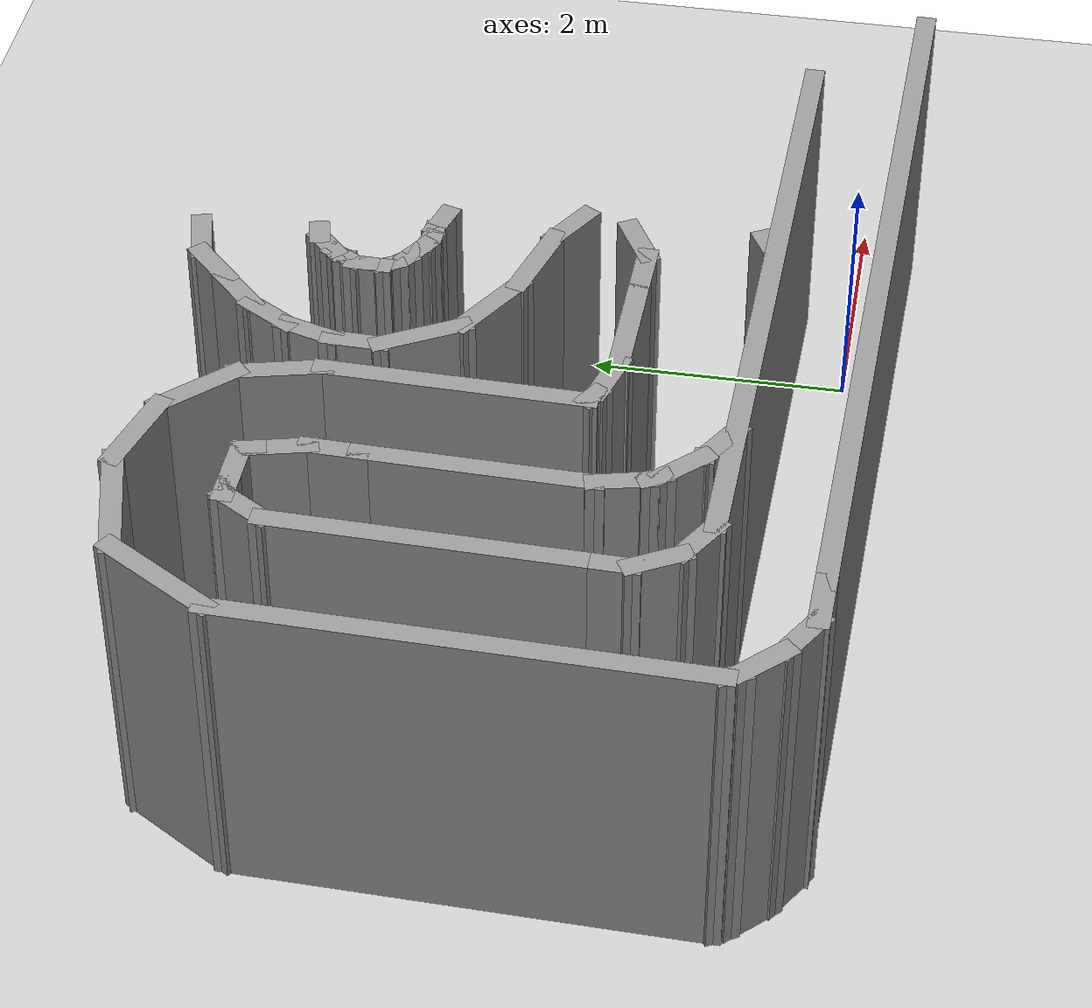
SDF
<sdf version="1.7">
 <world name="default">
  <model name="ground_plane">
   <static>1</static>
   <link name="link">
    <collision name="collision">
     <geometry><plane><normal>0 0 1</normal><size>100 100</size></plane></geometry>
     <surface>
      <contact><collide_bitmask>65535</collide_bitmask></contact>
      <friction><ode><mu>100</mu><mu2>50</mu2></ode></friction>
     </surface>
    </collision>
    <visual name="visual">
     <cast_shadows>0</cast_shadows>
     <geometry><plane><normal>0 0 1</normal><size>100 100</size></plane></geometry>
     <material>
      <script><uri>file://media/materials/scripts/gazebo.material</uri><name>Gazebo/Grey</name></script>
     </material>
    </visual>
   </link>
  </model>
  <model name="t11">
   <pose>-1.75336 2.18774 -0 0 -0 1.54563</pose>
   <link name="Wall_10">
    <collision name="Wall_10_Collision">
     <geometry><box><size>1 0.15 2.5</size></box></geometry>
     <pose>0 0 1.25 0 -0 0</pose>
    </collision>
    <visual name="Wall_10_Visual">
     <pose>0 0 1.25 0 -0 0</pose>
     <geometry><box><size>1 0.15 2.5</size></box></geometry>
     <material>
      <script><uri>file://media/materials/scripts/gazebo.material</uri><name>Gazebo/Grey</name></script>
      <ambient>1 1 1 1</ambient>
     </material>
     <meta><layer>0</layer></meta>
    </visual>
    <pose>-0.781809 0.629649 0 0 -0 -1.5708</pose>
   </link>
   <link name="Wall_11">
    <collision name="Wall_11_Collision">
     <geometry><box><size>0.5 0.15 2.5</size></box></geometry>
     <pose>0 0 1.25 0 -0 0</pose>
    </collision>
    <visual name="Wall_11_Visual">
     <pose>0 0 1.25 0 -0 0</pose>
     <geometry><box><size>0.5 0.15 2.5</size></box></geometry>
     <material>
      <script><uri>file://media/materials/scripts/gazebo.material</uri><name>Gazebo/Grey</name></script>
      <ambient>1 1 1 1</ambient>
     </material>
     <meta><layer>0</layer></meta>
    </visual>
    <pose>-0.781809 0.029649 0 0 -0 -1.5708</pose>
   </link>
   <link name="Wall_12">
    <collision name="Wall_12_Collision">
     <geometry><box><size>0.5 0.15 2.5</size></box></geometry>
     <pose>0 0 1.25 0 -0 0</pose>
    </collision>
    <visual name="Wall_12_Visual">
     <pose>0 0 1.25 0 -0 0</pose>
     <geometry><box><size>0.5 0.15 2.5</size></box></geometry>
     <material>
      <script><uri>file://media/materials/scripts/gazebo.material</uri><name>Gazebo/Grey</name></script>
      <ambient>1 1 1 1</ambient>
     </material>
     <meta><layer>0</layer></meta>
    </visual>
    <pose>-0.694309 -0.296906 0 0 -0 -1.0472</pose>
   </link>
   <link name="Wall_129">
    <collision name="Wall_129_Collision">
     <geometry><box><size>0.25 0.15 2.5</size></box></geometry>
     <pose>0 0 1.25 0 -0 0</pose>
    </collision>
    <visual name="Wall_129_Visual">
     <pose>0 0 1.25 0 -0 0</pose>
     <geometry><box><size>0.25 0.15 2.5</size></box></geometry>
     <material>
      <script><uri>file://media/materials/scripts/gazebo.material</uri><name>Gazebo/Grey</name></script>
      <ambient>1 1 1 1</ambient>
     </material>
     <meta><layer>0</layer></meta>
    </visual>
    <pose>-1.59468 -0.469524 0 0 -0 2.0944</pose>
   </link>
   <link name="Wall_14">
    <collision name="Wall_14_Collision">
     <geometry><box><size>0.5 0.15 2.5</size></box></geometry>
     <pose>0 0 1.25 0 -0 0</pose>
    </collision>
    <visual name="Wall_14_Visual">
     <pose>0 0 1.25 0 -0 0</pose>
     <geometry><box><size>0.5 0.15 2.5</size></box></geometry>
     <material>
      <script><uri>file://media/materials/scripts/gazebo.material</uri><name>Gazebo/Grey</name></script>
      <ambient>1 1 1 1</ambient>
     </material>
     <meta><layer>0</layer></meta>
    </visual>
    <pose>-0.181235 -0.387492 0 0 -0 1.0472</pose>
   </link>
   <link name="Wall_15">
    <collision name="Wall_15_Collision">
     <geometry><box><size>0.75 0.15 2.5</size></box></geometry>
     <pose>0 0 1.25 0 -0 0</pose>
    </collision>
    <visual name="Wall_15_Visual">
     <pose>0 0 1.25 0 -0 0</pose>
     <geometry><box><size>0.75 0.15 2.5</size></box></geometry>
     <material>
      <script><uri>file://media/materials/scripts/gazebo.material</uri><name>Gazebo/Grey</name></script>
      <ambient>1 1 1 1</ambient>
     </material>
     <meta><layer>0</layer></meta>
    </visual>
    <pose>-0.01609 0.05384 0 0 -0 1.309</pose>
   </link>
   <link name="Wall_16">
    <collision name="Wall_16_Collision">
     <geometry><box><size>0.75 0.15 2.5</size></box></geometry>
     <pose>0 0 1.25 0 -0 0</pose>
    </collision>
    <visual name="Wall_16_Visual">
     <pose>0 0 1.25 0 -0 0</pose>
     <geometry><box><size>0.75 0.15 2.5</size></box></geometry>
     <material>
      <script><uri>file://media/materials/scripts/gazebo.material</uri><name>Gazebo/Grey</name></script>
      <ambient>1 1 1 1</ambient>
     </material>
     <meta><layer>0</layer></meta>
    </visual>
    <pose>0.211556 0.603425 0 0 -0 1.0472</pose>
   </link>
   <link name="Wall_17">
    <collision name="Wall_17_Collision">
     <geometry><box><size>0.75 0.15 2.5</size></box></geometry>
     <pose>0 0 1.25 0 -0 0</pose>
    </collision>
    <visual name="Wall_17_Visual">
     <pose>0 0 1.25 0 -0 0</pose>
     <geometry><box><size>0.75 0.15 2.5</size></box></geometry>
     <material>
      <script><uri>file://media/materials/scripts/gazebo.material</uri><name>Gazebo/Grey</name></script>
      <ambient>1 1 1 1</ambient>
     </material>
     <meta><layer>0</layer></meta>
    </visual>
    <pose>0.621364 1.01323 0 0 -0 0.523599</pose>
   </link>
   <link name="Wall_18">
    <collision name="Wall_18_Collision">
     <geometry><box><size>0.5 0.15 2.5</size></box></geometry>
     <pose>0 0 1.25 0 -0 0</pose>
    </collision>
    <visual name="Wall_18_Visual">
     <pose>0 0 1.25 0 -0 0</pose>
     <geometry><box><size>0.5 0.15 2.5</size></box></geometry>
     <material>
      <script><uri>file://media/materials/scripts/gazebo.material</uri><name>Gazebo/Grey</name></script>
      <ambient>1 1 1 1</ambient>
     </material>
     <meta><layer>0</layer></meta>
    </visual>
    <pose>1.05617 1.16323 0 0 -0 0</pose>
   </link>
   <link name="Wall_19">
    <collision name="Wall_19_Collision">
     <geometry><box><size>0.5 0.15 2.5</size></box></geometry>
     <pose>0 0 1.25 0 -0 0</pose>
    </collision>
    <visual name="Wall_19_Visual">
     <pose>0 0 1.25 0 -0 0</pose>
     <geometry><box><size>0.5 0.15 2.5</size></box></geometry>
     <material>
      <script><uri>file://media/materials/scripts/gazebo.material</uri><name>Gazebo/Grey</name></script>
      <ambient>1 1 1 1</ambient>
     </material>
     <meta><layer>0</layer></meta>
    </visual>
    <pose>1.40021 1.11794 0 0 -0 -0.261799</pose>
   </link>
   <link name="Wall_2">
    <collision name="Wall_2_Collision">
     <geometry><box><size>1 0.15 2.5</size></box></geometry>
     <pose>0 0 1.25 0 -0 0</pose>
    </collision>
    <visual name="Wall_2_Visual">
     <pose>0 0 1.25 0 -0 0</pose>
     <geometry><box><size>1 0.15 2.5</size></box></geometry>
     <material>
      <script><uri>file://media/materials/scripts/gazebo.material</uri><name>Gazebo/Grey</name></script>
      <ambient>1 1 1 1</ambient>
     </material>
     <meta><layer>0</layer></meta>
    </visual>
    <pose>1.77983 3.67197 0 0 -0 -0.523599</pose>
   </link>
   <link name="Wall_20">
    <collision name="Wall_20_Collision">
     <geometry><box><size>0.5 0.15 2.5</size></box></geometry>
     <pose>0 0 1.25 0 -0 0</pose>
    </collision>
    <visual name="Wall_20_Visual">
     <pose>0 0 1.25 0 -0 0</pose>
     <geometry><box><size>0.5 0.15 2.5</size></box></geometry>
     <material>
      <script><uri>file://media/materials/scripts/gazebo.material</uri><name>Gazebo/Grey</name></script>
      <ambient>1 1 1 1</ambient>
     </material>
     <meta><layer>0</layer></meta>
    </visual>
    <pose>1.7208 0.985146 0 0 -0 -0.523599</pose>
   </link>
   <link name="Wall_21">
    <collision name="Wall_21_Collision">
     <geometry><box><size>0.5 0.15 2.5</size></box></geometry>
     <pose>0 0 1.25 0 -0 0</pose>
    </collision>
    <visual name="Wall_21_Visual">
     <pose>0 0 1.25 0 -0 0</pose>
     <geometry><box><size>0.5 0.15 2.5</size></box></geometry>
     <material>
      <script><uri>file://media/materials/scripts/gazebo.material</uri><name>Gazebo/Grey</name></script>
      <ambient>1 1 1 1</ambient>
     </material>
     <meta><layer>0</layer></meta>
    </visual>
    <pose>1.9961 0.773902 0 0 -0 -0.785398</pose>
   </link>
   <link name="Wall_22">
    <collision name="Wall_22_Collision">
     <geometry><box><size>0.5 0.15 2.5</size></box></geometry>
     <pose>0 0 1.25 0 -0 0</pose>
    </collision>
    <visual name="Wall_22_Visual">
     <pose>0 0 1.25 0 -0 0</pose>
     <geometry><box><size>0.5 0.15 2.5</size></box></geometry>
     <material>
      <script><uri>file://media/materials/scripts/gazebo.material</uri><name>Gazebo/Grey</name></script>
      <ambient>1 1 1 1</ambient>
     </material>
     <meta><layer>0</layer></meta>
    </visual>
    <pose>2.24358 0.526415 0 0 -0 -0.785398</pose>
   </link>
   <link name="Wall_23">
    <collision name="Wall_23_Collision">
     <geometry><box><size>0.5 0.15 2.5</size></box></geometry>
     <pose>0 0 1.25 0 -0 0</pose>
    </collision>
    <visual name="Wall_23_Visual">
     <pose>0 0 1.25 0 -0 0</pose>
     <geometry><box><size>0.5 0.15 2.5</size></box></geometry>
     <material>
      <script><uri>file://media/materials/scripts/gazebo.material</uri><name>Gazebo/Grey</name></script>
      <ambient>1 1 1 1</ambient>
     </material>
     <meta><layer>0</layer></meta>
    </visual>
    <pose>2.41262 0.233634 0 0 -0 -1.309</pose>
   </link>
   <link name="Wall_3">
    <collision name="Wall_3_Collision">
     <geometry><box><size>1 0.15 2.5</size></box></geometry>
     <pose>0 0 1.25 0 -0 0</pose>
    </collision>
    <visual name="Wall_3_Visual">
     <pose>0 0 1.25 0 -0 0</pose>
     <geometry><box><size>1 0.15 2.5</size></box></geometry>
     <material>
      <script><uri>file://media/materials/scripts/gazebo.material</uri><name>Gazebo/Grey</name></script>
      <ambient>1 1 1 1</ambient>
     </material>
     <meta><layer>0</layer></meta>
    </visual>
    <pose>2.25789 3.04895 0 0 -0 -1.309</pose>
   </link>
   <link name="Wall_34">
    <collision name="Wall_34_Collision">
     <geometry><box><size>3.5 0.15 2.5</size></box></geometry>
     <pose>0 0 1.25 0 -0 0</pose>
    </collision>
    <visual name="Wall_34_Visual">
     <pose>0 0 1.25 0 -0 0</pose>
     <geometry><box><size>3.5 0.15 2.5</size></box></geometry>
     <material>
      <script><uri>file://media/materials/scripts/gazebo.material</uri><name>Gazebo/Grey</name></script>
      <ambient>1 1 1 1</ambient>
     </material>
     <meta><layer>0</layer></meta>
    </visual>
    <pose>-0.26323 3.88447 0 0 -0 3.14159</pose>
   </link>
   <link name="Wall_35">
    <collision name="Wall_35_Collision">
     <geometry><box><size>0.25 0.15 2.5</size></box></geometry>
     <pose>0 0 1.25 0 -0 0</pose>
    </collision>
    <visual name="Wall_35_Visual">
     <pose>0 0 1.25 0 -0 0</pose>
     <geometry><box><size>0.25 0.15 2.5</size></box></geometry>
     <material>
      <script><uri>file://media/materials/scripts/gazebo.material</uri><name>Gazebo/Grey</name></script>
      <ambient>1 1 1 1</ambient>
     </material>
     <meta><layer>0</layer></meta>
    </visual>
    <pose>-1.98153 3.85947 0 0 -0 -2.61799</pose>
   </link>
   <link name="Wall_36">
    <collision name="Wall_36_Collision">
     <geometry><box><size>0.5 0.15 2.5</size></box></geometry>
     <pose>0 0 1.25 0 -0 0</pose>
    </collision>
    <visual name="Wall_36_Visual">
     <pose>0 0 1.25 0 -0 0</pose>
     <geometry><box><size>0.5 0.15 2.5</size></box></geometry>
     <material>
      <script><uri>file://media/materials/scripts/gazebo.material</uri><name>Gazebo/Grey</name></script>
      <ambient>1 1 1 1</ambient>
     </material>
     <meta><layer>0</layer></meta>
    </visual>
    <pose>-2.14858 3.71073 0 0 -0 -2.35619</pose>
   </link>
   <link name="Wall_37">
    <collision name="Wall_37_Collision">
     <geometry><box><size>0.5 0.15 2.5</size></box></geometry>
     <pose>0 0 1.25 0 -0 0</pose>
    </collision>
    <visual name="Wall_37_Visual">
     <pose>0 0 1.25 0 -0 0</pose>
     <geometry><box><size>0.5 0.15 2.5</size></box></geometry>
     <material>
      <script><uri>file://media/materials/scripts/gazebo.material</uri><name>Gazebo/Grey</name></script>
      <ambient>1 1 1 1</ambient>
     </material>
     <meta><layer>0</layer></meta>
    </visual>
    <pose>-2.35982 3.43543 0 0 -0 -2.0944</pose>
   </link>
   <link name="Wall_38">
    <collision name="Wall_38_Collision">
     <geometry><box><size>0.5 0.15 2.5</size></box></geometry>
     <pose>0 0 1.25 0 -0 0</pose>
    </collision>
    <visual name="Wall_38_Visual">
     <pose>0 0 1.25 0 -0 0</pose>
     <geometry><box><size>0.5 0.15 2.5</size></box></geometry>
     <material>
      <script><uri>file://media/materials/scripts/gazebo.material</uri><name>Gazebo/Grey</name></script>
      <ambient>1 1 1 1</ambient>
     </material>
     <meta><layer>0</layer></meta>
    </visual>
    <pose>-2.44732 3.10888 0 0 -0 -1.5708</pose>
   </link>
   <link name="Wall_39">
    <collision name="Wall_39_Collision">
     <geometry><box><size>6.5 0.15 2.5</size></box></geometry>
     <pose>0 0 1.25 0 -0 0</pose>
    </collision>
    <visual name="Wall_39_Visual">
     <pose>0 0 1.25 0 -0 0</pose>
     <geometry><box><size>6.5 0.15 2.5</size></box></geometry>
     <material>
      <script><uri>file://media/materials/scripts/gazebo.material</uri><name>Gazebo/Grey</name></script>
      <ambient>1 1 1 1</ambient>
     </material>
     <meta><layer>0</layer></meta>
    </visual>
    <pose>-2.44732 -0.241123 0 0 -0 -1.5708</pose>
   </link>
   <link name="Wall_4">
    <collision name="Wall_4_Collision">
     <geometry><box><size>0.75 0.15 2.5</size></box></geometry>
     <pose>0 0 1.25 0 -0 0</pose>
    </collision>
    <visual name="Wall_4_Visual">
     <pose>0 0 1.25 0 -0 0</pose>
     <geometry><box><size>0.75 0.15 2.5</size></box></geometry>
     <material>
      <script><uri>file://media/materials/scripts/gazebo.material</uri><name>Gazebo/Grey</name></script>
      <ambient>1 1 1 1</ambient>
     </material>
     <meta><layer>0</layer></meta>
    </visual>
    <pose>2.29024 2.34866 0 0 -0 -1.8326</pose>
   </link>
   <link name="Wall_41">
    <collision name="Wall_41_Collision">
     <geometry><box><size>5.25 0.15 2.5</size></box></geometry>
     <pose>0 0 1.25 0 -0 0</pose>
    </collision>
    <visual name="Wall_41_Visual">
     <pose>0 0 1.25 0 -0 0</pose>
     <geometry><box><size>5.25 0.15 2.5</size></box></geometry>
     <material>
      <script><uri>file://media/materials/scripts/gazebo.material</uri><name>Gazebo/Grey</name></script>
      <ambient>1 1 1 1</ambient>
     </material>
     <meta><layer>0</layer></meta>
    </visual>
    <pose>-1.67823 -0.005527 0 0 -0 1.5708</pose>
   </link>
   <link name="Wall_42">
    <collision name="Wall_42_Collision">
     <geometry><box><size>0.5 0.15 2.5</size></box></geometry>
     <pose>0 0 1.25 0 -0 0</pose>
    </collision>
    <visual name="Wall_42_Visual">
     <pose>0 0 1.25 0 -0 0</pose>
     <geometry><box><size>0.5 0.15 2.5</size></box></geometry>
     <material>
      <script><uri>file://media/materials/scripts/gazebo.material</uri><name>Gazebo/Grey</name></script>
      <ambient>1 1 1 1</ambient>
     </material>
     <meta><layer>0</layer></meta>
    </visual>
    <pose>-1.59073 2.69603 0 0 -0 1.0472</pose>
   </link>
   <link name="Wall_43">
    <collision name="Wall_43_Collision">
     <geometry><box><size>0.5 0.15 2.5</size></box></geometry>
     <pose>0 0 1.25 0 -0 0</pose>
    </collision>
    <visual name="Wall_43_Visual">
     <pose>0 0 1.25 0 -0 0</pose>
     <geometry><box><size>0.5 0.15 2.5</size></box></geometry>
     <material>
      <script><uri>file://media/materials/scripts/gazebo.material</uri><name>Gazebo/Grey</name></script>
      <ambient>1 1 1 1</ambient>
     </material>
     <meta><layer>0</layer></meta>
    </visual>
    <pose>-1.35167 2.93508 0 0 -0 0.523599</pose>
   </link>
   <link name="Wall_44">
    <collision name="Wall_44_Collision">
     <geometry><box><size>0.5 0.15 2.5</size></box></geometry>
     <pose>0 0 1.25 0 -0 0</pose>
    </collision>
    <visual name="Wall_44_Visual">
     <pose>0 0 1.25 0 -0 0</pose>
     <geometry><box><size>0.5 0.15 2.5</size></box></geometry>
     <material>
      <script><uri>file://media/materials/scripts/gazebo.material</uri><name>Gazebo/Grey</name></script>
      <ambient>1 1 1 1</ambient>
     </material>
     <meta><layer>0</layer></meta>
    </visual>
    <pose>-1.02512 3.02258 0 0 -0 0</pose>
   </link>
   <link name="Wall_45">
    <collision name="Wall_45_Collision">
     <geometry><box><size>2.25 0.15 2.5</size></box></geometry>
     <pose>0 0 1.25 0 -0 0</pose>
    </collision>
    <visual name="Wall_45_Visual">
     <pose>0 0 1.25 0 -0 0</pose>
     <geometry><box><size>2.25 0.15 2.5</size></box></geometry>
     <material>
      <script><uri>file://media/materials/scripts/gazebo.material</uri><name>Gazebo/Grey</name></script>
      <ambient>1 1 1 1</ambient>
     </material>
     <meta><layer>0</layer></meta>
    </visual>
    <pose>0.199879 3.02258 0 0 -0 0</pose>
   </link>
   <link name="Wall_46">
    <collision name="Wall_46_Collision">
     <geometry><box><size>0.5 0.15 2.5</size></box></geometry>
     <pose>0 0 1.25 0 -0 0</pose>
    </collision>
    <visual name="Wall_46_Visual">
     <pose>0 0 1.25 0 -0 0</pose>
     <geometry><box><size>0.5 0.15 2.5</size></box></geometry>
     <material>
      <script><uri>file://media/materials/scripts/gazebo.material</uri><name>Gazebo/Grey</name></script>
      <ambient>1 1 1 1</ambient>
     </material>
     <meta><layer>0</layer></meta>
    </visual>
    <pose>1.40143 2.93508 0 0 -0 -0.523599</pose>
   </link>
   <link name="Wall_47">
    <collision name="Wall_47_Collision">
     <geometry><box><size>0.25 0.15 2.5</size></box></geometry>
     <pose>0 0 1.25 0 -0 0</pose>
    </collision>
    <visual name="Wall_47_Visual">
     <pose>0 0 1.25 0 -0 0</pose>
     <geometry><box><size>0.25 0.15 2.5</size></box></geometry>
     <material>
      <script><uri>file://media/materials/scripts/gazebo.material</uri><name>Gazebo/Grey</name></script>
      <ambient>1 1 1 1</ambient>
     </material>
     <meta><layer>0</layer></meta>
    </visual>
    <pose>1.55299 2.79758 0 0 -0 -1.5708</pose>
   </link>
   <link name="Wall_48">
    <collision name="Wall_48_Collision">
     <geometry><box><size>0.5 0.15 2.5</size></box></geometry>
     <pose>0 0 1.25 0 -0 0</pose>
    </collision>
    <visual name="Wall_48_Visual">
     <pose>0 0 1.25 0 -0 0</pose>
     <geometry><box><size>0.5 0.15 2.5</size></box></geometry>
     <material>
      <script><uri>file://media/materials/scripts/gazebo.material</uri><name>Gazebo/Grey</name></script>
      <ambient>1 1 1 1</ambient>
     </material>
     <meta><layer>0</layer></meta>
    </visual>
    <pose>1.55299 2.57258 0 0 -0 -1.5708</pose>
   </link>
   <link name="Wall_49">
    <collision name="Wall_49_Collision">
     <geometry><box><size>0.25 0.15 2.5</size></box></geometry>
     <pose>0 0 1.25 0 -0 0</pose>
    </collision>
    <visual name="Wall_49_Visual">
     <pose>0 0 1.25 0 -0 0</pose>
     <geometry><box><size>0.25 0.15 2.5</size></box></geometry>
     <material>
      <script><uri>file://media/materials/scripts/gazebo.material</uri><name>Gazebo/Grey</name></script>
      <ambient>1 1 1 1</ambient>
     </material>
     <meta><layer>0</layer></meta>
    </visual>
    <pose>1.50469 2.38464 0 0 -0 -2.87979</pose>
   </link>
   <link name="Wall_5">
    <collision name="Wall_5_Collision">
     <geometry><box><size>0.75 0.15 2.5</size></box></geometry>
     <pose>0 0 1.25 0 -0 0</pose>
    </collision>
    <visual name="Wall_5_Visual">
     <pose>0 0 1.25 0 -0 0</pose>
     <geometry><box><size>0.75 0.15 2.5</size></box></geometry>
     <material>
      <script><uri>file://media/materials/scripts/gazebo.material</uri><name>Gazebo/Grey</name></script>
      <ambient>1 1 1 1</ambient>
     </material>
     <meta><layer>0</layer></meta>
    </visual>
    <pose>2.00047 1.84675 0 0 -0 -2.35619</pose>
   </link>
   <link name="Wall_50">
    <collision name="Wall_50_Collision">
     <geometry><box><size>0.5 0.15 2.5</size></box></geometry>
     <pose>0 0 1.25 0 -0 0</pose>
    </collision>
    <visual name="Wall_50_Visual">
     <pose>0 0 1.25 0 -0 0</pose>
     <geometry><box><size>0.5 0.15 2.5</size></box></geometry>
     <material>
      <script><uri>file://media/materials/scripts/gazebo.material</uri><name>Gazebo/Grey</name></script>
      <ambient>1 1 1 1</ambient>
     </material>
     <meta><layer>0</layer></meta>
    </visual>
    <pose>1.28736 2.32641 0 0 -0 -2.87979</pose>
   </link>
   <link name="Wall_51">
    <collision name="Wall_51_Collision">
     <geometry><box><size>0.5 0.15 2.5</size></box></geometry>
     <pose>0 0 1.25 0 -0 0</pose>
    </collision>
    <visual name="Wall_51_Visual">
     <pose>0 0 1.25 0 -0 0</pose>
     <geometry><box><size>0.5 0.15 2.5</size></box></geometry>
     <material>
      <script><uri>file://media/materials/scripts/gazebo.material</uri><name>Gazebo/Grey</name></script>
      <ambient>1 1 1 1</ambient>
     </material>
     <meta><layer>0</layer></meta>
    </visual>
    <pose>0.943322 2.28111 0 0 -0 3.14159</pose>
   </link>
   <link name="Wall_52">
    <collision name="Wall_52_Collision">
     <geometry><box><size>1.75 0.15 2.5</size></box></geometry>
     <pose>0 0 1.25 0 -0 0</pose>
    </collision>
    <visual name="Wall_52_Visual">
     <pose>0 0 1.25 0 -0 0</pose>
     <geometry><box><size>1.75 0.15 2.5</size></box></geometry>
     <material>
      <script><uri>file://media/materials/scripts/gazebo.material</uri><name>Gazebo/Grey</name></script>
      <ambient>1 1 1 1</ambient>
     </material>
     <meta><layer>0</layer></meta>
    </visual>
    <pose>-0.031678 2.28111 0 0 -0 3.14159</pose>
   </link>
   <link name="Wall_53">
    <collision name="Wall_53_Collision">
     <geometry><box><size>0.5 0.15 2.5</size></box></geometry>
     <pose>0 0 1.25 0 -0 0</pose>
    </collision>
    <visual name="Wall_53_Visual">
     <pose>0 0 1.25 0 -0 0</pose>
     <geometry><box><size>0.5 0.15 2.5</size></box></geometry>
     <material>
      <script><uri>file://media/materials/scripts/gazebo.material</uri><name>Gazebo/Grey</name></script>
      <ambient>1 1 1 1</ambient>
     </material>
     <meta><layer>0</layer></meta>
    </visual>
    <pose>-1.00072 2.23582 0 0 -0 -2.87979</pose>
   </link>
   <link name="Wall_54">
    <collision name="Wall_54_Collision">
     <geometry><box><size>0.25 0.15 2.5</size></box></geometry>
     <pose>0 0 1.25 0 -0 0</pose>
    </collision>
    <visual name="Wall_54_Visual">
     <pose>0 0 1.25 0 -0 0</pose>
     <geometry><box><size>0.25 0.15 2.5</size></box></geometry>
     <material>
      <script><uri>file://media/materials/scripts/gazebo.material</uri><name>Gazebo/Grey</name></script>
      <ambient>1 1 1 1</ambient>
     </material>
     <meta><layer>0</layer></meta>
    </visual>
    <pose>-1.21305 2.16553 0 0 -0 -2.61799</pose>
   </link>
   <link name="Wall_55">
    <collision name="Wall_55_Collision">
     <geometry><box><size>0.5 0.15 2.5</size></box></geometry>
     <pose>0 0 1.25 0 -0 0</pose>
    </collision>
    <visual name="Wall_55_Visual">
     <pose>0 0 1.25 0 -0 0</pose>
     <geometry><box><size>0.5 0.15 2.5</size></box></geometry>
     <material>
      <script><uri>file://media/materials/scripts/gazebo.material</uri><name>Gazebo/Grey</name></script>
      <ambient>1 1 1 1</ambient>
     </material>
     <meta><layer>0</layer></meta>
    </visual>
    <pose>-1.3801 2.01678 0 0 -0 -2.35619</pose>
   </link>
   <link name="Wall_56">
    <collision name="Wall_56_Collision">
     <geometry><box><size>0.15 0.15 2.5</size></box></geometry>
     <pose>0 0 1.25 0 -0 0</pose>
    </collision>
    <visual name="Wall_56_Visual">
     <pose>0 0 1.25 0 -0 0</pose>
     <geometry><box><size>0.15 0.15 2.5</size></box></geometry>
     <material>
      <script><uri>file://media/materials/scripts/gazebo.material</uri><name>Gazebo/Grey</name></script>
      <ambient>1 1 1 1</ambient>
     </material>
     <meta><layer>0</layer></meta>
    </visual>
    <pose>-1.50384 1.89304 0 0 -0 0</pose>
   </link>
   <link name="Wall_57">
    <collision name="Wall_57_Collision">
     <geometry><box><size>0.5 0.15 2.5</size></box></geometry>
     <pose>0 0 1.25 0 -0 0</pose>
    </collision>
    <visual name="Wall_57_Visual">
     <pose>0 0 1.25 0 -0 0</pose>
     <geometry><box><size>0.5 0.15 2.5</size></box></geometry>
     <material>
      <script><uri>file://media/materials/scripts/gazebo.material</uri><name>Gazebo/Grey</name></script>
      <ambient>1 1 1 1</ambient>
     </material>
     <meta><layer>0</layer></meta>
    </visual>
    <pose>-1.59134 1.74148 0 0 -0 -2.0944</pose>
   </link>
   <link name="Wall_6">
    <collision name="Wall_6_Collision">
     <geometry><box><size>0.75 0.15 2.5</size></box></geometry>
     <pose>0 0 1.25 0 -0 0</pose>
    </collision>
    <visual name="Wall_6_Visual">
     <pose>0 0 1.25 0 -0 0</pose>
     <geometry><box><size>0.75 0.15 2.5</size></box></geometry>
     <material>
      <script><uri>file://media/materials/scripts/gazebo.material</uri><name>Gazebo/Grey</name></script>
      <ambient>1 1 1 1</ambient>
     </material>
     <meta><layer>0</layer></meta>
    </visual>
    <pose>1.49856 1.55697 0 0 -0 -2.87979</pose>
   </link>
   <link name="Wall_7">
    <collision name="Wall_7_Collision">
     <geometry><box><size>2 0.15 2.5</size></box></geometry>
     <pose>0 0 1.25 0 -0 0</pose>
    </collision>
    <visual name="Wall_7_Visual">
     <pose>0 0 1.25 0 -0 0</pose>
     <geometry><box><size>2 0.15 2.5</size></box></geometry>
     <material>
      <script><uri>file://media/materials/scripts/gazebo.material</uri><name>Gazebo/Grey</name></script>
      <ambient>1 1 1 1</ambient>
     </material>
     <meta><layer>0</layer></meta>
    </visual>
    <pose>0.283777 1.47933 0 0 -0 3.14159</pose>
   </link>
   <link name="Wall_74">
    <collision name="Wall_74_Collision">
     <geometry><box><size>0.25 0.15 2.5</size></box></geometry>
     <pose>0 0 1.25 0 -0 0</pose>
    </collision>
    <visual name="Wall_74_Visual">
     <pose>0 0 1.25 0 -0 0</pose>
     <geometry><box><size>0.25 0.15 2.5</size></box></geometry>
     <material>
      <script><uri>file://media/materials/scripts/gazebo.material</uri><name>Gazebo/Grey</name></script>
      <ambient>1 1 1 1</ambient>
     </material>
     <meta><layer>0</layer></meta>
    </visual>
    <pose>1.5857 0.03059 0 0 -0 1.8326</pose>
   </link>
   <link name="Wall_75">
    <collision name="Wall_75_Collision">
     <geometry><box><size>0.25 0.15 2.5</size></box></geometry>
     <pose>0 0 1.25 0 -0 0</pose>
    </collision>
    <visual name="Wall_75_Visual">
     <pose>0 0 1.25 0 -0 0</pose>
     <geometry><box><size>0.25 0.15 2.5</size></box></geometry>
     <material>
      <script><uri>file://media/materials/scripts/gazebo.material</uri><name>Gazebo/Grey</name></script>
      <ambient>1 1 1 1</ambient>
     </material>
     <meta><layer>0</layer></meta>
    </visual>
    <pose>1.53741 0.114242 0 0 -0 2.35619</pose>
   </link>
   <link name="Wall_76">
    <collision name="Wall_76_Collision">
     <geometry><box><size>0.25 0.15 2.5</size></box></geometry>
     <pose>0 0 1.25 0 -0 0</pose>
    </collision>
    <visual name="Wall_76_Visual">
     <pose>0 0 1.25 0 -0 0</pose>
     <geometry><box><size>0.25 0.15 2.5</size></box></geometry>
     <material>
      <script><uri>file://media/materials/scripts/gazebo.material</uri><name>Gazebo/Grey</name></script>
      <ambient>1 1 1 1</ambient>
     </material>
     <meta><layer>0</layer></meta>
    </visual>
    <pose>1.4667 0.184953 0 0 -0 2.35619</pose>
   </link>
   <link name="Wall_77">
    <collision name="Wall_77_Collision">
     <geometry><box><size>0.25 0.15 2.5</size></box></geometry>
     <pose>0 0 1.25 0 -0 0</pose>
    </collision>
    <visual name="Wall_77_Visual">
     <pose>0 0 1.25 0 -0 0</pose>
     <geometry><box><size>0.25 0.15 2.5</size></box></geometry>
     <material>
      <script><uri>file://media/materials/scripts/gazebo.material</uri><name>Gazebo/Grey</name></script>
      <ambient>1 1 1 1</ambient>
     </material>
     <meta><layer>0</layer></meta>
    </visual>
    <pose>1.38804 0.245308 0 0 -0 2.61799</pose>
   </link>
   <link name="Wall_78">
    <collision name="Wall_78_Collision">
     <geometry><box><size>0.15 0.15 2.5</size></box></geometry>
     <pose>0 0 1.25 0 -0 0</pose>
    </collision>
    <visual name="Wall_78_Visual">
     <pose>0 0 1.25 0 -0 0</pose>
     <geometry><box><size>0.15 0.15 2.5</size></box></geometry>
     <material>
      <script><uri>file://media/materials/scripts/gazebo.material</uri><name>Gazebo/Grey</name></script>
      <ambient>1 1 1 1</ambient>
     </material>
     <meta><layer>0</layer></meta>
    </visual>
    <pose>1.34474 0.270308 0 0 -0 0</pose>
   </link>
   <link name="Wall_79">
    <collision name="Wall_79_Collision">
     <geometry><box><size>0.25 0.15 2.5</size></box></geometry>
     <pose>0 0 1.25 0 -0 0</pose>
    </collision>
    <visual name="Wall_79_Visual">
     <pose>0 0 1.25 0 -0 0</pose>
     <geometry><box><size>0.25 0.15 2.5</size></box></geometry>
     <material>
      <script><uri>file://media/materials/scripts/gazebo.material</uri><name>Gazebo/Grey</name></script>
      <ambient>1 1 1 1</ambient>
     </material>
     <meta><layer>0</layer></meta>
    </visual>
    <pose>1.30144 0.295308 0 0 -0 2.61799</pose>
   </link>
   <link name="Wall_8">
    <collision name="Wall_8_Collision">
     <geometry><box><size>0.25 0.15 2.5</size></box></geometry>
     <pose>0 0 1.25 0 -0 0</pose>
    </collision>
    <visual name="Wall_8_Visual">
     <pose>0 0 1.25 0 -0 0</pose>
     <geometry><box><size>0.25 0.15 2.5</size></box></geometry>
     <material>
      <script><uri>file://media/materials/scripts/gazebo.material</uri><name>Gazebo/Grey</name></script>
      <ambient>1 1 1 1</ambient>
     </material>
     <meta><layer>0</layer></meta>
    </visual>
    <pose>-0.666223 1.43602 0 0 -0 -2.0944</pose>
   </link>
   <link name="Wall_80">
    <collision name="Wall_80_Collision">
     <geometry><box><size>0.25 0.15 2.5</size></box></geometry>
     <pose>0 0 1.25 0 -0 0</pose>
    </collision>
    <visual name="Wall_80_Visual">
     <pose>0 0 1.25 0 -0 0</pose>
     <geometry><box><size>0.25 0.15 2.5</size></box></geometry>
     <material>
      <script><uri>file://media/materials/scripts/gazebo.material</uri><name>Gazebo/Grey</name></script>
      <ambient>1 1 1 1</ambient>
     </material>
     <meta><layer>0</layer></meta>
    </visual>
    <pose>1.20813 0.320308 0 0 -0 3.14159</pose>
   </link>
   <link name="Wall_81">
    <collision name="Wall_81_Collision">
     <geometry><box><size>0.25 0.15 2.5</size></box></geometry>
     <pose>0 0 1.25 0 -0 0</pose>
    </collision>
    <visual name="Wall_81_Visual">
     <pose>0 0 1.25 0 -0 0</pose>
     <geometry><box><size>0.25 0.15 2.5</size></box></geometry>
     <material>
      <script><uri>file://media/materials/scripts/gazebo.material</uri><name>Gazebo/Grey</name></script>
      <ambient>1 1 1 1</ambient>
     </material>
     <meta><layer>0</layer></meta>
    </visual>
    <pose>1.10814 0.320308 0 0 -0 3.14159</pose>
   </link>
   <link name="Wall_82">
    <collision name="Wall_82_Collision">
     <geometry><box><size>0.25 0.15 2.5</size></box></geometry>
     <pose>0 0 1.25 0 -0 0</pose>
    </collision>
    <visual name="Wall_82_Visual">
     <pose>0 0 1.25 0 -0 0</pose>
     <geometry><box><size>0.25 0.15 2.5</size></box></geometry>
     <material>
      <script><uri>file://media/materials/scripts/gazebo.material</uri><name>Gazebo/Grey</name></script>
      <ambient>1 1 1 1</ambient>
     </material>
     <meta><layer>0</layer></meta>
    </visual>
    <pose>1.01483 0.295308 0 0 -0 -2.61799</pose>
   </link>
   <link name="Wall_83">
    <collision name="Wall_83_Collision">
     <geometry><box><size>0.25 0.15 2.5</size></box></geometry>
     <pose>0 0 1.25 0 -0 0</pose>
    </collision>
    <visual name="Wall_83_Visual">
     <pose>0 0 1.25 0 -0 0</pose>
     <geometry><box><size>0.25 0.15 2.5</size></box></geometry>
     <material>
      <script><uri>file://media/materials/scripts/gazebo.material</uri><name>Gazebo/Grey</name></script>
      <ambient>1 1 1 1</ambient>
     </material>
     <meta><layer>0</layer></meta>
    </visual>
    <pose>0.936177 0.234953 0 0 -0 -2.35619</pose>
   </link>
   <link name="Wall_84">
    <collision name="Wall_84_Collision">
     <geometry><box><size>0.25 0.15 2.5</size></box></geometry>
     <pose>0 0 1.25 0 -0 0</pose>
    </collision>
    <visual name="Wall_84_Visual">
     <pose>0 0 1.25 0 -0 0</pose>
     <geometry><box><size>0.25 0.15 2.5</size></box></geometry>
     <material>
      <script><uri>file://media/materials/scripts/gazebo.material</uri><name>Gazebo/Grey</name></script>
      <ambient>1 1 1 1</ambient>
     </material>
     <meta><layer>0</layer></meta>
    </visual>
    <pose>0.875821 0.156296 0 0 -0 -2.0944</pose>
   </link>
   <link name="Wall_85">
    <collision name="Wall_85_Collision">
     <geometry><box><size>0.25 0.15 2.5</size></box></geometry>
     <pose>0 0 1.25 0 -0 0</pose>
    </collision>
    <visual name="Wall_85_Visual">
     <pose>0 0 1.25 0 -0 0</pose>
     <geometry><box><size>0.25 0.15 2.5</size></box></geometry>
     <material>
      <script><uri>file://media/materials/scripts/gazebo.material</uri><name>Gazebo/Grey</name></script>
      <ambient>1 1 1 1</ambient>
     </material>
     <meta><layer>0</layer></meta>
    </visual>
    <pose>0.825821 0.069693 0 0 -0 -2.0944</pose>
   </link>
   <link name="Wall_86">
    <collision name="Wall_86_Collision">
     <geometry><box><size>0.25 0.15 2.5</size></box></geometry>
     <pose>0 0 1.25 0 -0 0</pose>
    </collision>
    <visual name="Wall_86_Visual">
     <pose>0 0 1.25 0 -0 0</pose>
     <geometry><box><size>0.25 0.15 2.5</size></box></geometry>
     <material>
      <script><uri>file://media/materials/scripts/gazebo.material</uri><name>Gazebo/Grey</name></script>
      <ambient>1 1 1 1</ambient>
     </material>
     <meta><layer>0</layer></meta>
    </visual>
    <pose>0.78788 -0.021904 0 0 -0 -1.8326</pose>
   </link>
   <link name="Wall_87">
    <collision name="Wall_87_Collision">
     <geometry><box><size>0.25 0.15 2.5</size></box></geometry>
     <pose>0 0 1.25 0 -0 0</pose>
    </collision>
    <visual name="Wall_87_Visual">
     <pose>0 0 1.25 0 -0 0</pose>
     <geometry><box><size>0.25 0.15 2.5</size></box></geometry>
     <material>
      <script><uri>file://media/materials/scripts/gazebo.material</uri><name>Gazebo/Grey</name></script>
      <ambient>1 1 1 1</ambient>
     </material>
     <meta><layer>0</layer></meta>
    </visual>
    <pose>0.774939 -0.1202 0 0 -0 -1.5708</pose>
   </link>
   <link name="Wall_88">
    <collision name="Wall_88_Collision">
     <geometry><box><size>0.25 0.15 2.5</size></box></geometry>
     <pose>0 0 1.25 0 -0 0</pose>
    </collision>
    <visual name="Wall_88_Visual">
     <pose>0 0 1.25 0 -0 0</pose>
     <geometry><box><size>0.25 0.15 2.5</size></box></geometry>
     <material>
      <script><uri>file://media/materials/scripts/gazebo.material</uri><name>Gazebo/Grey</name></script>
      <ambient>1 1 1 1</ambient>
     </material>
     <meta><layer>0</layer></meta>
    </visual>
    <pose>0.761998 -0.218497 0 0 -0 -1.8326</pose>
   </link>
   <link name="Wall_89">
    <collision name="Wall_89_Collision">
     <geometry><box><size>0.25 0.15 2.5</size></box></geometry>
     <pose>0 0 1.25 0 -0 0</pose>
    </collision>
    <visual name="Wall_89_Visual">
     <pose>0 0 1.25 0 -0 0</pose>
     <geometry><box><size>0.25 0.15 2.5</size></box></geometry>
     <material>
      <script><uri>file://media/materials/scripts/gazebo.material</uri><name>Gazebo/Grey</name></script>
      <ambient>1 1 1 1</ambient>
     </material>
     <meta><layer>0</layer></meta>
    </visual>
    <pose>0.736117 -0.315089 0 0 -0 -1.8326</pose>
   </link>
   <link name="Wall_9">
    <collision name="Wall_9_Collision">
     <geometry><box><size>0.5 0.15 2.5</size></box></geometry>
     <pose>0 0 1.25 0 -0 0</pose>
    </collision>
    <visual name="Wall_9_Visual">
     <pose>0 0 1.25 0 -0 0</pose>
     <geometry><box><size>0.5 0.15 2.5</size></box></geometry>
     <material>
      <script><uri>file://media/materials/scripts/gazebo.material</uri><name>Gazebo/Grey</name></script>
      <ambient>1 1 1 1</ambient>
     </material>
     <meta><layer>0</layer></meta>
    </visual>
    <pose>-0.736516 1.22369 0 0 -0 -1.8326</pose>
   </link>
   <static>1</static>
  </model>
 </world>
</sdf>
